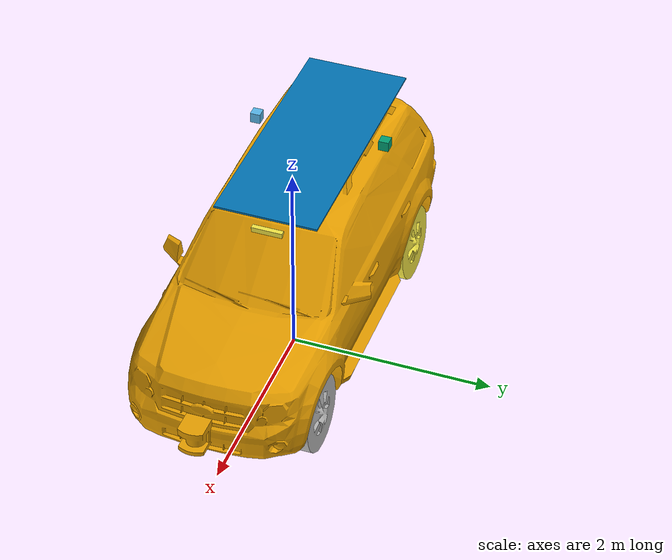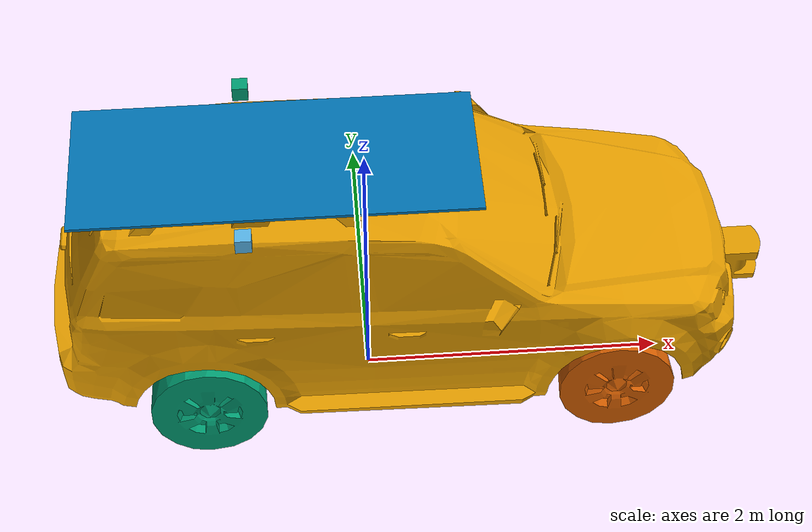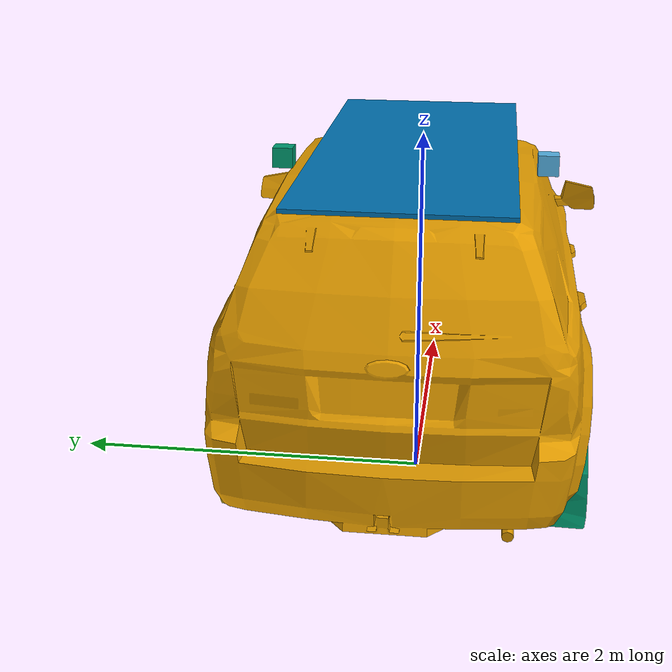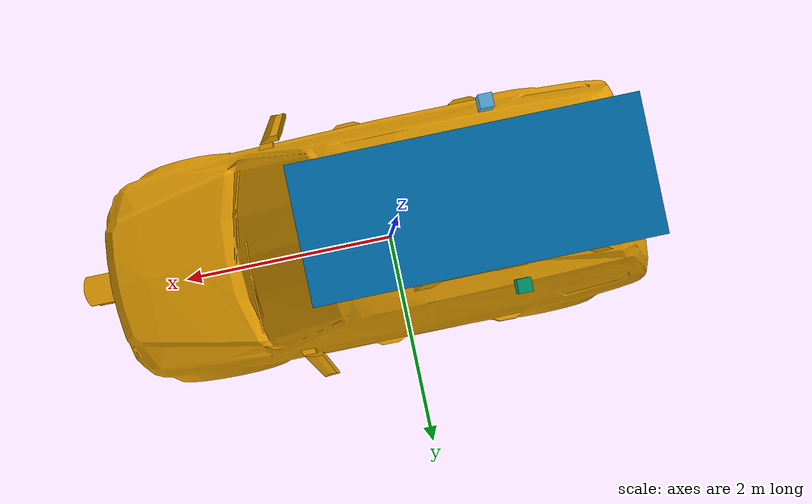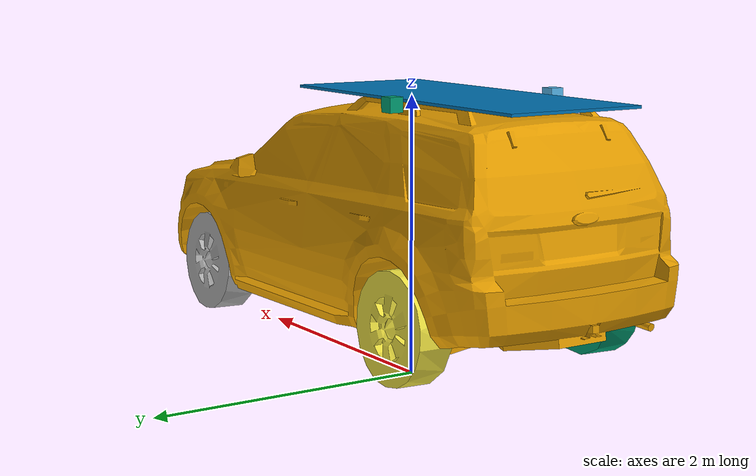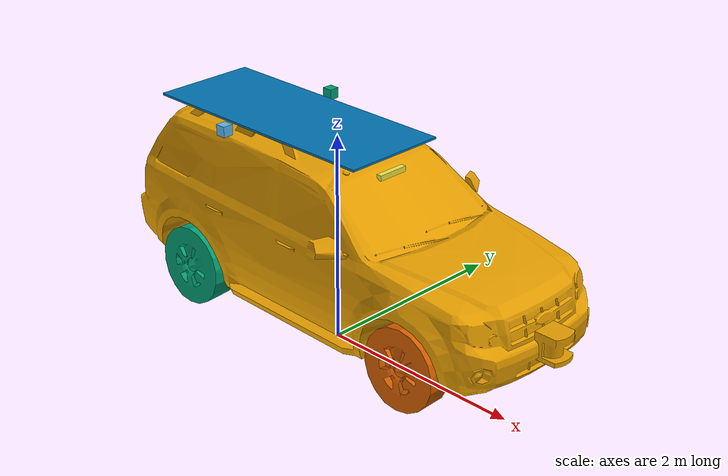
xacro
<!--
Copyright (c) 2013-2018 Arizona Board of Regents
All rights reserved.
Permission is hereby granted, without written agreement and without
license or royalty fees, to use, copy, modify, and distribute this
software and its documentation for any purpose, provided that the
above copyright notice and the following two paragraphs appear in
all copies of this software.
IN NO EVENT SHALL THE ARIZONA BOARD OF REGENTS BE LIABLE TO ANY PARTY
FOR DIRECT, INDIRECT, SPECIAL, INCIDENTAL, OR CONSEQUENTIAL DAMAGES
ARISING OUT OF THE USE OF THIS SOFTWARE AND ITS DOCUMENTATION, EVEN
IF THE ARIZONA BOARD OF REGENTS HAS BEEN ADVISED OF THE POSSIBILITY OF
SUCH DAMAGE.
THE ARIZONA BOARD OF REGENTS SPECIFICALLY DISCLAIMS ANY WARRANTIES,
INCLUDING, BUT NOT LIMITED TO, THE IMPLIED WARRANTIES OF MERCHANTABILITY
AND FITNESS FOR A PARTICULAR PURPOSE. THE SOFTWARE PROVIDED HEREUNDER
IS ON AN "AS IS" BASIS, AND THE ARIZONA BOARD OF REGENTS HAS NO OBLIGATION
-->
<?xml version="1.0" ?>

<!-- Inertial parameters selected with the help of
http://www.car-engineer.com/vehicle-inertia-calculation-tool/
-->

<robot name="$(arg roboname)" xmlns:xacro="http://www.ros.org/wiki/xacro">

    <xacro:arg name="camera_left" default="true"/>
    <xacro:arg name="camera_right" default="true"/>
    <xacro:arg name="triclops" default="true"/>
    <xacro:arg name="velodyne_points" default="true"/>
    <xacro:arg name="laser_points" default="true"/>

    <xacro:property name="velodyne_points" value="$(arg velodyne_points)"/>
    <xacro:property name="laser_points" value="$(arg laser_points)"/>
    <xacro:property name="camera_right" value="$(arg camera_right)"/>
    <xacro:property name="camera_left" value="$(arg camera_left)"/>
    <xacro:property name="triclops" value="$(arg triclops)"/>
    <xacro:property name="camera_box" value="0.1"/>
    <xacro:property name="sensor_box" value="0.25"/>

    <xacro:property name="PI" value="3.1415926835897931"/>
    <xacro:property name="base_height" value="1.0639"/>
    <xacro:property name="base_mass" value="1703.239"/>

    <!--Car's height is the height of bouding box of the 3D
    mesh given by meshlab -->
    <xacro:property name="car_height" value="1.5837572084"/>

    <!-- Wheelbase is roughly 2.8232111 m -->
    <xacro:property name="car_to_bumper" value="4.4324092962"/>
    <xacro:property name="car_COM_x" value="-0.0202"/>
    <xacro:property name="car_COM_y" value="0.0126"/>
    <xacro:property name="car_COM_z" value="-0.0256"/>

    <!-- We are assuming that front bumper's height is half of the car's
    bounding box height -->
    <xacro:property name="front_bumper_height" value="${car_height/2}"/>

    <!--This is the car tread, i.e distance between right and left front wheels-->
    <xacro:property name="car_width" value="1.290"/>
    <xacro:property name="car_width_offset" value="0.05"/>

    <!-- Inertial tensor of car body has been taken from meshlab after
    analyzing the 3D structure of car body -->
    <xacro:property name="base_mass_ixx" value="347.195805"/>
    <xacro:property name="base_mass_ixy" value="-11.4914985"/>
    <xacro:property name="base_mass_ixz" value="18.5070628"/>
    <xacro:property name="base_mass_iyy" value="2330.10026"/>
    <xacro:property name="base_mass_iyz" value="3.97814264"/>
    <xacro:property name="base_mass_izz" value="2529.41827"/>

    <xacro:property name="tyre_x" value="1.05"/>
    <xacro:property name="tyre_front_x" value="1.55"/>
    <xacro:property name="tyre_back_x" value="-1.05"/>
    <xacro:property name="tyre_y" value="0.765"/>
    <xacro:property name="tyre_r" value="0.66"/>

    <!--Below is the thickness of the car's tyre-->
    <xacro:property name="tyre_length" value="0.2336291492"/>

    <xacro:property name="tyre_radius" value="0.3671951254"/>
    <xacro:property name="tyre_mass" value="20"/>

    <!-- Here we are calculating inertial tensor of a cylinderical body.
    In this model, we didn't use actual mesh of tyre, but a simplified
    cylindrical model. -->
    <xacro:property name="tyre_mass_ixx" value="${((1/2)*tyre_mass*tyre_radius*tyre_radius)}"/>
    <xacro:property name="tyre_mass_iyy" value="${((1/12)*tyre_mass*tyre_length*tyre_length) + ((1/4)*tyre_mass*tyre_radius*tyre_radius)}"/>
    <xacro:property name="tyre_mass_izz" value="${((1/12)*tyre_mass*tyre_length*tyre_length) + ((1/4)*tyre_mass*tyre_radius*tyre_radius)}"/>
    <xacro:property name="tyre_mass_ixz" value="0.0"/>
    <xacro:property name="tyre_mass_ixy" value="0.0"/>
    <xacro:property name="tyre_mass_iyz" value="0.0"/>

    <xacro:property name="tyre_height" value="-0.696"/>

    <xacro:property name="str_mass" value="50.00"/>
    <xacro:property name="str_length" value="0.05"/>
    <xacro:property name="str_radius" value="0.1"/>
    <xacro:property name="front_right_offset" value="0.05"/>
    <xacro:property name="str_mass_ixx" value="${((1/2)*str_mass*str_radius*str_radius)}"/>
    <xacro:property name="str_mass_iyy" value="${((1/12)*str_mass*str_length*str_length) + ((1/4)*str_mass*str_radius*str_radius)}"/>
    <xacro:property name="str_mass_izz" value="${((1/12)*str_mass*str_length*str_length) + ((1/4)*str_mass*str_radius*str_radius)}"/>

    <xacro:property name="str_angle" value="0.6"/>

    <xacro:property name="tyre_origin">
        <origin xyz="0 0 0" rpy="${PI/2} 0 0"/>
    </xacro:property>
    <xacro:property name="tyre_origin_2">
        <origin xyz="0 0 0" rpy="0 0 ${PI/2}"/>
    </xacro:property>
    <xacro:property name="tyre_origin_3">
        <origin xyz="0 0 0" rpy="0 0 ${-PI/2}"/>
    </xacro:property>
    <xacro:property name="marker_origin">
        <origin xyz="0 0 0" rpy="0 0 0"/>
    </xacro:property>

    <xacro:property name="front_laser_size" value="0.25"/>
    <xacro:property name="front_laser_mass" value="1"/>

    <xacro:include filename="$(find catvehicle)/urdf/catvehicle.gazebo"/>

    <xacro:if value="${velodyne_points}">
        <!-- You can pass parameters in order to change the max/min
        horizontal angles of the velodyne sensors. These are interpreted
        in the velodyne_points gazebo file -->
        <xacro:arg name="velodyne_min_angle" default="-0.4"/>
        <xacro:arg name="velodyne_max_angle" default="0.4"/>
        <xacro:property name="velodyne_min_angle" value="$(arg velodyne_min_angle)"/>
        <xacro:property name="velodyne_max_angle" value="$(arg velodyne_max_angle)"/>

        <xacro:include filename="$(find catvehicle)/urdf/catvehicle_velodyne_points.gazebo"/>
    </xacro:if>
    <xacro:if value="${camera_right}">
        <xacro:include filename="$(find catvehicle)/urdf/catvehicle_right_camera.gazebo"/>
    </xacro:if>
    <xacro:if value="${camera_left}">
        <xacro:include filename="$(find catvehicle)/urdf/catvehicle_left_camera.gazebo"/>
    </xacro:if>
    <xacro:if value="${triclops}">
        <xacro:include filename="$(find catvehicle)/urdf/catvehicle_triclops.gazebo"/>
    </xacro:if>

    <xacro:if value="${laser_points}">
        <xacro:include filename="$(find catvehicle)/urdf/catvehicle_laser_points.gazebo"/>
    </xacro:if>

    <!--Car Body-->

    <link name="base_link">
        <collision>
            <origin xyz="0 0 ${base_height}" rpy="0 0 0"/>
            <geometry>
                <mesh filename="package://catvehicle/meshes/ford_escape_no_wheels_2.dae"/>
            </geometry>
        </collision>
        <visual>
            <origin xyz="0 0 ${base_height}" rpy="0 0 0"/>
            <geometry>
                <mesh filename="package://catvehicle/meshes/ford_escape_no_wheels_2.dae"/>
            </geometry>
        </visual>
    </link>

    <joint name="inertial_joint" type="fixed">
        <parent link="base_link"/>
        <child link="main_mass"/>
        <origin xyz="0 0 0" rpy="0 0 0"/>
    </joint>

    <link name="main_mass" type="fixed">
        <parent link="inertial_joint"/>
        <inertial>
            <origin xyz="${car_COM_x} ${car_COM_y} ${car_COM_z}" rpy="0 0 0"/> <!-- This is the center of mass of Car Body-->
            <mass value="${base_mass}"/>
            <inertia
            ixx="${base_mass_ixx}"  ixy="${base_mass_ixy}" ixz="${base_mass_ixz}"
            iyy="${base_mass_iyy}" iyz="${base_mass_iyz}"
            izz="${base_mass_izz}"/>
        </inertial>
    </link>

    <!--Back Right Wheel-->

    <joint name="back_right_wheel_joint" type="continuous">
        <parent link="base_link"/>
        <child link="back_right_wheel_link"/>
        <origin xyz="${tyre_back_x} ${-tyre_y} ${tyre_r}" rpy="0 0 0"/>
        <axis xyz="0 1 0"/>
        <dynamics damping="0.01"/>
        <limit effort="10000" velocity="1000" />
        <joint_properties damping="10" friction="10.0" />
    </joint>

    <link name="back_right_wheel_link">
        <collision>
            <origin xyz="0 0 0" rpy="${PI/2} 0 0"/>
            <geometry>
                <cylinder length="${tyre_length}" radius="${tyre_radius}"/>
                <!--mesh filename="package://catvehicle/meshes/ford_escape_wheel.dae"/-->
            </geometry>
            <surface>
                <friction>
                    <ode>
                        <mu>10000000</mu>
                        <mu2>7000</mu2>
                    </ode>
                </friction>
                <bounce>
                    <restitution_coefficient>0.0</restitution_coefficient>
                </bounce>
                <contact>
                    <ode>
                        <soft_cfm>0.001</soft_cfm>
                        <soft_erp>0.5</soft_erp>
                        <kp>10000000</kp>
                        <kd>1</kd>
                    </ode>
                </contact>
            </surface>
        </collision>

        <visual>
            <!--origin xyz="0 0 0" rpy="${PI/2} 0 0"/-->
            <origin xyz="0 ${car_width_offset*2} 0.0" rpy="0 0 ${-PI/2}"/>
            <geometry>
                <mesh scale="1.2 1 1" filename="package://catvehicle/meshes/ford_escape_wheel.dae"/>
            </geometry>
        </visual>

        <inertial>
            <origin xyz="0 0 0" rpy="0 0 0"/>
            <mass value="${tyre_mass}"/>
            <inertia
            ixx="${tyre_mass_ixx}"  ixy="${tyre_mass_ixy}"  ixz="${tyre_mass_ixz}"
            iyy="${tyre_mass_iyy}"  iyz="${tyre_mass_iyz}"
            izz="${tyre_mass_izz}"/>
        </inertial>
    </link>

    <!--Back Left Wheel -->

    <joint name="back_left_wheel_joint" type="continuous">
        <parent link="base_link"/>
        <child link="back_left_wheel_link"/>
        <origin xyz="${tyre_back_x} ${tyre_y} ${tyre_r}" rpy="0 0 0"/>
        <axis xyz="0 1 0"/>
        <dynamics damping="0.01"/>
        <limit effort="10000" velocity="1000" />
        <joint_properties damping="10" friction="10.0" />
    </joint>

    <link name="back_left_wheel_link">
        <collision>
            <origin xyz="0 0 0" rpy="${PI/2} 0 0"/>
            <geometry>
                <cylinder length="${tyre_length}" radius="${tyre_radius}"/>
                <!--mesh filename="package://catvehicle/meshes/ford_escape_wheel.dae"/-->
            </geometry>
            <surface>
                <friction>
                    <ode>
                        <mu>10000000</mu>
                        <mu2>7000</mu2>
                    </ode>
                </friction>
                <bounce>
                    <restitution_coefficient>0.0</restitution_coefficient>
                </bounce>
                <contact>
                    <ode>
                        <soft_cfm>0.001</soft_cfm>
                        <soft_erp>0.5</soft_erp>
                        <kp>10000000</kp>
                        <kd>1</kd>
                    </ode>
                </contact>
            </surface>
        </collision>

        <visual>
            <!--origin xyz="0 0 0" rpy="${PI/2} 0 0"/-->
            <origin xyz="0 ${-car_width_offset*2} 0.0" rpy="0 0 ${PI/2}"/>
            <geometry>
                <!--cylinder length="${tyre_length}" radius="${tyre_radius}"/-->
                <mesh scale="1.2 1 1" filename="package://catvehicle/meshes/ford_escape_wheel.dae"/>
            </geometry>
        </visual>

        <inertial>

            <origin xyz="0 0 0" rpy="0 0 0"/>
            <mass value="${tyre_mass}"/>
            <inertia
            ixx="${tyre_mass_ixx}"  ixy="${tyre_mass_ixy}"  ixz="${tyre_mass_ixz}"
            iyy="${tyre_mass_iyy}"  iyz="${tyre_mass_iyz}"
            izz="${tyre_mass_izz}"/>
        </inertial>
    </link>

    <!--Right Steering-->

    <joint name="front_right_steering_joint" type="revolute">
        <parent link="base_link"/>
        <child link="front_right_steering_link"/>
        <origin xyz="${tyre_front_x} ${-car_width/2 - 2*str_length} ${tyre_r}" rpy="0 0 0"/>
        <axis xyz="0 0 1"/>
        <limit effort="10000" lower="${-str_angle}" upper="${str_angle}" velocity="1000"/>
    </joint>

    <link name="front_right_steering_link">
        <collision>
            <xacro:insert_block name="tyre_origin"/>
	        <geometry>
                <cylinder length="${str_length}" radius="${str_radius}"/>
       		</geometry>
        </collision>

        <visual>
            <xacro:insert_block name="tyre_origin"/>
            <geometry>
                <cylinder length="${str_length}" radius="${str_radius}"/>
            </geometry>
        </visual>

        <inertial>
            <origin xyz="0 0 0" rpy="0 0 0"/>
            <mass value="${str_mass}"/>
            <inertia
            ixx="${str_mass_ixx}"  ixy="0.000000"  ixz="0.000000"
            iyy="${str_mass_iyy}"  iyz="0.000000"
            izz="${str_mass_izz}"/>
        </inertial>
    </link>

    <!--Front Right Wheel-->
    <joint name="front_right_wheel_joint" type="continuous">
        <parent link="front_right_steering_link"/>
        <child link="front_right_wheel_link"/>
        <origin xyz="0 0 0" rpy="0 0 0"/>
        <axis xyz="0 1 0"/>
        <dynamics damping="0.01"/>
        <limit effort="10000" velocity="1000"/>
        <joint_properties damping="10" friction="10.0" />
    </joint>

    <link name="front_right_wheel_link">
        <collision>
            <origin xyz="0 0 0" rpy="${PI/2} 0 0"/>
            <!--origin xyz="0 0 0" rpy="0 0 ${-PI/2}"/-->
            <geometry>
                <cylinder length="${tyre_length}" radius="${tyre_radius}"/>
                <!--mesh filename="package://catvehicle/meshes/ford_escape_wheel.dae"/-->
            </geometry>

            <surface>
                <friction>
                    <ode>
                        <mu>10000000</mu>
                        <mu2>7000</mu2>
                    </ode>
                </friction>
                <bounce>
                    <restitution_coefficient>0.0</restitution_coefficient>
                </bounce>
                <contact>
                    <ode>
                        <soft_cfm>0.001</soft_cfm>
                        <soft_erp>0.5</soft_erp>
                        <kp>10000000</kp>
                        <kd>1</kd>
                    </ode>
                </contact>
            </surface>
        </collision>

        <visual>
            <!--origin xyz="0 0 0" rpy="${PI/2} 0 0"/-->
            <origin xyz="0 ${car_width_offset*2} 0.0" rpy="0 0 ${-PI/2}"/>
            <geometry>
                <mesh scale="1.2 1 1" filename="package://catvehicle/meshes/ford_escape_wheel.dae"/>
                </geometry>
        </visual>

        <inertial>
            <origin xyz="0 0 0" rpy="0 0 0"/>
            <mass value="${tyre_mass}"/>
            <inertia
            ixx="${tyre_mass_ixx}"  ixy="${tyre_mass_ixy}"  ixz="${tyre_mass_ixz}"
            iyy="${tyre_mass_iyy}"  iyz="${tyre_mass_iyz}"
            izz="${tyre_mass_izz}"/>
        </inertial>
    </link>

    <!--Left Steering-->
    <joint name="front_left_steering_joint" type="revolute">
        <parent link="base_link"/>
        <child link="front_left_steering_link"/>
        <origin xyz="${tyre_front_x} ${car_width/2 + 2*str_length} ${tyre_r}" rpy="0 0 0"/>
        <axis xyz="0 0 1"/>
        <limit effort="10000" lower="${-str_angle}" upper="${str_angle}" velocity="1000"/>
    </joint>

    <link name="front_left_steering_link">
        <parent link="base_link"/>
        <collision>
            <xacro:insert_block name="tyre_origin"/>
            <geometry>
                <cylinder length="${str_length}" radius="${str_radius}"/>
            </geometry>
        </collision>
        <visual>
            <xacro:insert_block name="tyre_origin"/>
            <geometry>
                <cylinder length="${str_length}" radius="${str_radius}"/>
            </geometry>
        </visual>
        <inertial>
            <origin xyz="0 0 0" rpy="0 0 0"/>
            <mass value="${str_mass}"/>
            <inertia
            ixx="${str_mass_ixx}"  ixy="0.000000"  ixz="0.000000"
            iyy="${str_mass_iyy}"  iyz="0.000000"
            izz="${str_mass_izz}"/>
        </inertial>
    </link>

<!--Front Left Wheel-->

    <joint name="front_left_wheel_joint" type="continuous">
          <parent link="front_left_steering_link"/>
          <child link="front_left_wheel_link"/>
          <origin xyz="0 0 0" rpy="0 0 0"/>
          <axis xyz="0 1 0"/>
          <dynamics damping="0.01"/>
          <limit effort="10000" velocity="1000" />
          <joint_properties damping="10" friction="10.0" />

    </joint>

    <link name="front_left_wheel_link">
        <parent link="front_left_wheel_joint"/>
        <collision>
            <origin xyz="0 0 0" rpy="${PI/2} 0 0"/>
            <!--origin xyz="0 0 0" rpy="0 0 ${PI/2}"/-->
            <geometry>
                <cylinder length="${tyre_length}" radius="${tyre_radius}"/>
                <!--mesh filename="package://catvehicle/meshes/ford_escape_wheel.dae"/-->
            </geometry>
            <surface>
                <friction>
                    <ode>
                        <mu>10000000</mu>
                        <mu2>7000</mu2>
                    </ode>
                </friction>
                <bounce>
                    <restitution_coefficient>0.0</restitution_coefficient>
                </bounce>
                <contact>
                    <ode>
                        <soft_cfm>0.001</soft_cfm>
                        <soft_erp>0.5</soft_erp>
                        <kp>10000000</kp>
                        <kd>1</kd>
                    </ode>
                </contact>
            </surface>
        </collision>

        <visual>
            <!--origin xyz="0 0 0" rpy="${PI/2} 0 0"/-->
            <origin xyz="0 ${-car_width_offset*2} 0.0" rpy="0 0 ${PI/2}"/>
            <geometry>
            <!--cylinder length="${tyre_length}" radius="${tyre_radius}"/-->
            <mesh scale="1.2 1 1" filename="package://catvehicle/meshes/ford_escape_wheel.dae"/>
            </geometry>
        </visual>

        <inertial>
            <origin xyz="0 0 0" rpy="0 0 0"/>
            <mass value="${tyre_mass}"/>
            <inertia
            ixx="${tyre_mass_ixx}"  ixy="${tyre_mass_ixy}"  ixz="${tyre_mass_ixz}"
            iyy="${tyre_mass_iyy}"  iyz="${tyre_mass_iyz}"
            izz="${tyre_mass_izz}"/>
        </inertial>
    </link>

    <!-- front laser-->
    <joint name="front_laser_joint" type="fixed">
        <origin xyz="${car_to_bumper/2 + front_laser_size} 0 ${front_bumper_height + front_laser_size/2 + 0.01}" rpy="0 0 0"/>
        <axis xyz="0 0 1"/>
        <parent link="base_link"/>
        <child link="front_laser_link"/>
    </joint>

    <link name="front_laser_link">
        <parent link="front_laser_joint"/>
            <collision>
                <origin xyz="0 0 0" rpy="0 0.0 0"/>
                <geometry>
                    <box size="${front_laser_size} ${front_laser_size} ${front_laser_size}"/>
                </geometry>
            </collision>

            <visual>
                <origin xyz="0 0 0" rpy="0 0 0"/>
                <geometry>
                    <mesh filename="package://catvehicle/meshes/SickLMS.dae"/>
                    <!--box size="${front_laser_size} ${front_laser_size} ${front_laser_size}"/-->
                </geometry>
            </visual>

            <inertial>
                <mass value="${front_laser_mass}" />
                <origin xyz="0 0 0" rpy="0 0 0"/>
                <inertia ixx="${(1/6)*front_laser_mass*front_laser_size*front_laser_size}" ixy="0" ixz="0"
                iyy="${(1/6)*front_laser_mass*front_laser_size*front_laser_size}" iyz="0"
                izz="${(1/6)*front_laser_mass*front_laser_size*front_laser_size}" />
            </inertial>
            </link>

    <joint name="camera_right_joint" type="fixed">
    <origin xyz="-0.75 -${car_width/2} ${0.725 + camera_box/2 + 1.25}" rpy="0 0 -${PI/2}"/>
        <axis xyz="0 0 1"/>
        <parent link="base_link"/>
        <child link="camera_right_link"/>
    </joint>

    <link name="camera_right_link">
        <collision>
          <origin xyz="0 0 0" rpy="0 0 0"/>
          <geometry>
           <box size="${camera_box} ${camera_box} ${camera_box}"/>
          </geometry>
        </collision>

        <visual>
          <origin xyz="0 0 0" rpy="0 0 0"/>
          <geometry>
          <box size="${camera_box} ${camera_box} ${camera_box}"/>
              </geometry>
        </visual>

        <inertial>
          <mass value="1e-5" />
          <origin xyz="0 0 0" rpy="0 0 0"/>
          <inertia ixx="1e-6" ixy="0" ixz="0" iyy="1e-6" iyz="0" izz="1e-6" />
        </inertial>
    </link>

    <joint name="camera_left_joint" type="fixed">
    <origin xyz="-0.75 ${car_width/2} ${0.725 + camera_box/2 + 1.25}" rpy="0 0 ${PI/2}"/>
        <axis xyz="0 0 1"/>
        <parent link="base_link"/>
        <child link="camera_left_link"/>
    </joint>

    <link name="camera_left_link">
        <collision>
          <origin xyz="0 0 0" rpy="0 0 0"/>
          <geometry>
           <box size="${camera_box} ${camera_box} ${camera_box}"/>
          </geometry>
        </collision>

        <visual>
          <origin xyz="0 0 0" rpy="0 0 0"/>
          <geometry>
          <box size="${camera_box} ${camera_box} ${camera_box}"/>
              </geometry>
        </visual>

        <inertial>
          <mass value="1e-5" />
          <origin xyz="0 0 0" rpy="0 0 0"/>
          <inertia ixx="1e-6" ixy="0" ixz="0" iyy="1e-6" iyz="0" izz="1e-6" />
        </inertial>
    </link>

    <joint name="triclops" type="fixed">
    <origin xyz="0.65 0 ${0.725 + sensor_box/2 + 1}" rpy="0 0 0"/>
        <axis xyz="0 0 1"/>
        <parent link="base_link"/>
        <child link="triclops_link"/>
    </joint>

    <link name="triclops_link">
        <collision>
          <origin xyz="0 0 0" rpy="0 0 0"/>
          <geometry>
          <box size="${camera_box/2} ${3*camera_box} ${camera_box/2}"/>
          </geometry>
        </collision>

        <visual>
          <origin xyz="0 0 0" rpy="0 0 0"/>
          <geometry>
          <box size="${camera_box/2} ${3*camera_box} ${camera_box/2}"/>
              </geometry>
        </visual>

        <inertial>
          <mass value="1e-5" />
          <origin xyz="0 0 0" rpy="0 0 0"/>
          <inertia ixx="1e-6" ixy="0" ixz="0" iyy="1e-6" iyz="0" izz="1e-6" />
        </inertial>
    </link>

    <joint name="velodyne_joint" type="fixed">
        <origin xyz="-1.2 0 ${sensor_box/2 + 0.01}" rpy="0 0 0"/>
        <axis xyz="0 0 1"/>
        <parent link="triclops_link"/>
        <child link="velodyne_link"/>
    </joint>

    <link name="velodyne_link">
            <collision>
              <origin xyz="0 0 0" rpy="0 0 0"/>
              <geometry>
               <box size="${sensor_box*10} ${sensor_box*4} ${sensor_box/2}"/>
              </geometry>
                <surface>
                    <friction>
                        <ode>
                            <mu>10000000</mu>
                            <mu2>7000</mu2>
                        </ode>
                    </friction>
                 </surface>
            </collision>

            <visual>
              <origin xyz="0 -0.5 0.05" rpy="0 1.57 1.57"/>
              <geometry>
                <mesh filename="model://apriltag3-5/meshes/apriltag3-5.dae" scale="2 5 2"/>
              </geometry>
            </visual>

        <inertial>
            <mass value="${front_laser_mass}" />
            <origin xyz="0 0 0" rpy="0 0 0"/>
            <inertia ixx="${(1/6)*front_laser_mass*front_laser_size*front_laser_size}" ixy="0" ixz="0"
            iyy="${(1/6)*front_laser_mass*front_laser_size*front_laser_size}" iyz="0"
            izz="${(1/6)*front_laser_mass*front_laser_size*front_laser_size}" />
        </inertial>
    </link>

<!-- motors and transmissions for the two rear wheels -->
    <transmission name="tran1">
        <type>transmission_interface/SimpleTransmission</type>
        <joint name="back_right_wheel_joint">
            <hardwareInterface>hardware_interface/VelocityJointInterface</hardwareInterface>
        </joint>
        <actuator name="motor1">
            <hardwareInterface>hardware_interface/VelocityJointInterface</hardwareInterface>
            <mechanicalReduction>1</mechanicalReduction>
        </actuator>
    </transmission>

    <transmission name="tran2">
        <type>transmission_interface/SimpleTransmission</type>
        <joint name="back_left_wheel_joint">
            <hardwareInterface>hardware_interface/VelocityJointInterface</hardwareInterface>
        </joint>
        <actuator name="motor2">
            <hardwareInterface>hardware_interface/VelocityJointInterface</hardwareInterface>
            <mechanicalReduction>1</mechanicalReduction>
        </actuator>
    </transmission>

    <transmission name="rack_and_pinion_left">
        <type>transmission_interface/SimpleTransmission</type>
        <joint name="front_left_steering_joint">
            <hardwareInterface>hardware_interface/PositionJointInterface</hardwareInterface>
        </joint>

        <actuator name="eps_left">
            <hardwareInterface>hardware_interface/PositionJointInterface</hardwareInterface>
            <mechanicalReduction>1</mechanicalReduction>
        </actuator>
    </transmission>

    <transmission name="rack_and_pinion_right">
        <type>transmission_interface/SimpleTransmission</type>
        <joint name="front_right_steering_joint">
            <hardwareInterface>hardware_interface/PositionJointInterface</hardwareInterface>
        </joint>

        <actuator name="eps_right">
            <hardwareInterface>hardware_interface/PositionJointInterface</hardwareInterface>
            <mechanicalReduction>1</mechanicalReduction>
        </actuator>
    </transmission>
</robot>
